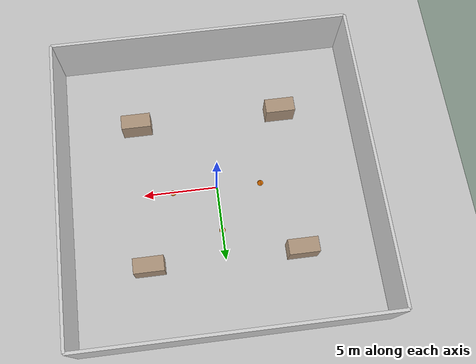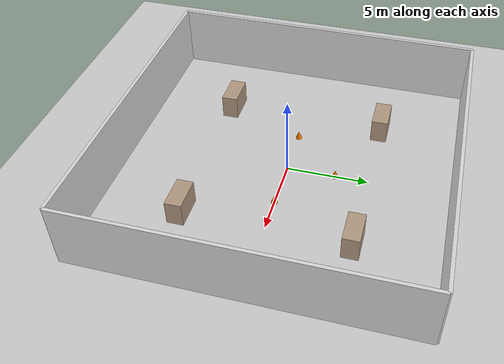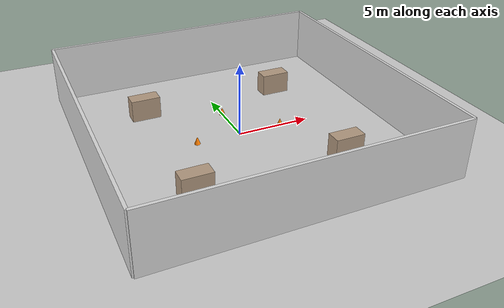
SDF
<?xml version="1.0"?>
<sdf version="1.6">
  <world name="warehouse">
    <physics type="ode">
      <max_step_size>0.001</max_step_size>
      <real_time_factor>1.0</real_time_factor>
    </physics>
    <scene>
      <ambient>0.4 0.4 0.4 1</ambient>
      <background>0.2 0.2 0.25 1</background>
      <shadows>true</shadows>
    </scene>

    <!-- Large open warehouse floor -->
    <include>
      <uri>https://fuel.gazebosim.org/1.0/OpenRobotics/models/Ground Plane</uri>
    </include>

    <!-- Warehouse walls (20m x 20m) -->
    <model name="warehouse_wall_north"><static>true</static><pose>0 10 2 0 0 0</pose>
      <link name="link"><collision><geometry><box><size>20 0.2 4</size></box></geometry></collision>
      <visual><geometry><box><size>20 0.2 4</size></box></geometry><material><ambient>0.85 0.85 0.85 1</ambient></material></visual></link></model>

    <model name="warehouse_wall_south"><static>true</static><pose>0 -10 2 0 0 0</pose>
      <link name="link"><collision><geometry><box><size>20 0.2 4</size></box></geometry></collision>
      <visual><geometry><box><size>20 0.2 4</size></box></geometry><material><ambient>0.85 0.85 0.85 1</ambient></material></visual></link></model>

    <model name="warehouse_wall_east"><static>true</static><pose>10 0 2 0 0 0</pose>
      <link name="link"><collision><geometry><box><size>0.2 20 4</size></box></geometry></collision>
      <visual><geometry><box><size>0.2 20 4</size></box></geometry><material><ambient>0.85 0.85 0.85 1</ambient></material></visual></link></model>

    <model name="warehouse_wall_west"><static>true</static><pose>-10 0 2 0 0 0</pose>
      <link name="link"><collision><geometry><box><size>0.2 20 4</size></box></geometry></collision>
      <visual><geometry><box><size>0.2 20 4</size></box></geometry><material><ambient>0.85 0.85 0.85 1</ambient></material></visual></link></model>

    <!-- Shelving units -->
    <model name="shelf_1"><static>true</static><pose>-5 -5 0.5 0 0 0</pose>
      <link name="link"><collision><geometry><box><size>2 1 2</size></box></geometry></collision>
      <visual><geometry><box><size>2 1 2</size></box></geometry><material><ambient>0.7 0.6 0.5 1</ambient></material></visual></link></model>
    <model name="shelf_2"><static>true</static><pose>5 -5 0.5 0 0 0</pose>
      <link name="link"><collision><geometry><box><size>2 1 2</size></box></geometry></collision>
      <visual><geometry><box><size>2 1 2</size></box></geometry><material><ambient>0.7 0.6 0.5 1</ambient></material></visual></link></model>
    <model name="shelf_3"><static>true</static><pose>-5 5 0.5 0 0 0</pose>
      <link name="link"><collision><geometry><box><size>2 1 2</size></box></geometry></collision>
      <visual><geometry><box><size>2 1 2</size></box></geometry><material><ambient>0.7 0.6 0.5 1</ambient></material></visual></link></model>
    <model name="shelf_4"><static>true</static><pose>5 5 0.5 0 0 0</pose>
      <link name="link"><collision><geometry><box><size>2 1 2</size></box></geometry></collision>
      <visual><geometry><box><size>2 1 2</size></box></geometry><material><ambient>0.7 0.6 0.5 1</ambient></material></visual></link></model>

    <!-- Cones for navigation testing -->
    <model name="cone_1"><static>true</static><pose>-3 0 0.25 0 0 0</pose>
      <link name="link"><collision><geometry><cone><radius>0.2</radius><length>0.5</length></cone></geometry></collision>
      <visual><geometry><cone><radius>0.2</radius><length>0.5</length></cone></geometry><material><ambient>1 0.5 0 1</ambient></material></visual></link></model>
    <model name="cone_2"><static>true</static><pose>0 3 0.25 0 0 0</pose>
      <link name="link"><collision><geometry><cone><radius>0.2</radius><length>0.5</length></cone></geometry></collision>
      <visual><geometry><cone><radius>0.2</radius><length>0.5</length></cone></geometry><material><ambient>1 0.5 0 1</ambient></material></visual></link></model>
    <model name="cone_3"><static>true</static><pose>3 0 0.25 0 0 0</pose>
      <link name="link"><collision><geometry><cone><radius>0.2</radius><length>0.5</length></cone></geometry></collision>
      <visual><geometry><cone><radius>0.2</radius><length>0.5</length></cone></geometry><material><ambient>1 0.5 0 1</ambient></material></visual></link></model>

    <light name="sun" type="directional">
      <pose>5 5 10 0 0 0</pose>
      <diffuse>0.8 0.8 0.8 1</diffuse>
      <specular>0.2 0.2 0.2 1</specular>
      <direction>-0.5 0.1 -0.9</direction>
      <cast_shadows>true</cast_shadows>
    </light>

    <!-- Warehouse industrial lights -->
    <light name="light_1" type="point">
      <pose>0 0 3 0 0 0</pose>
      <diffuse>0.9 0.9 0.85 1</diffuse>
      <attenuation><range>10</range><constant>0.5</constant><linear>0.01</linear><quadratic>0.001</quadratic></attenuation>
    </light>
  </world>
</sdf>
